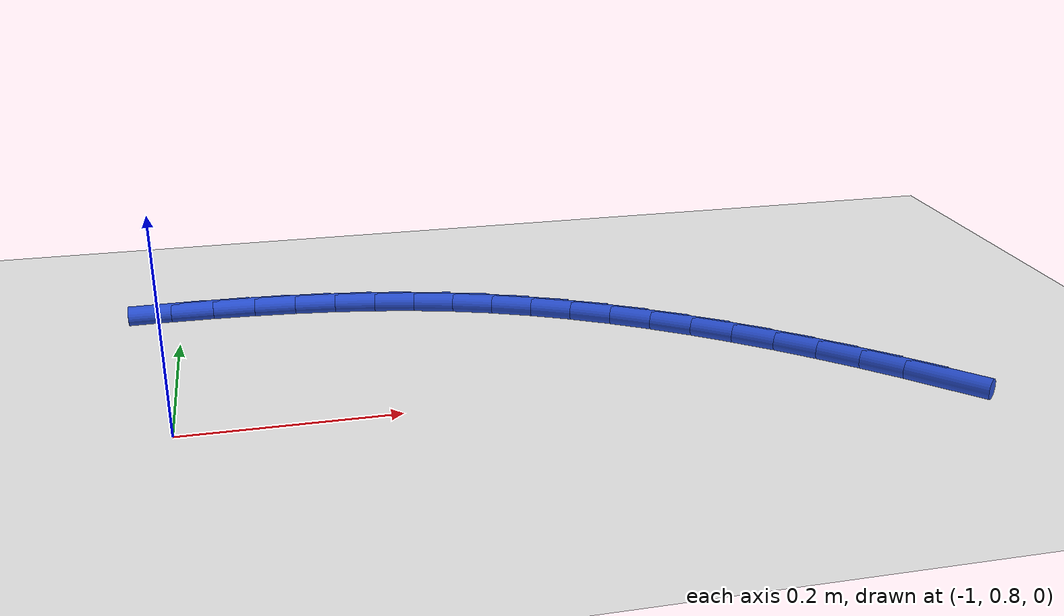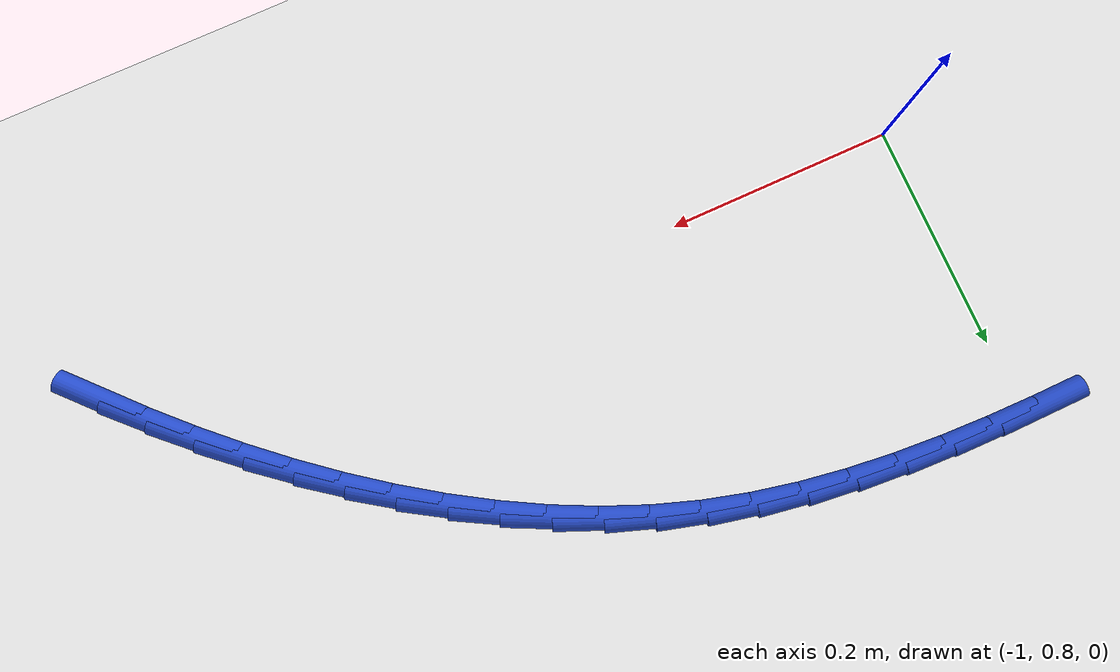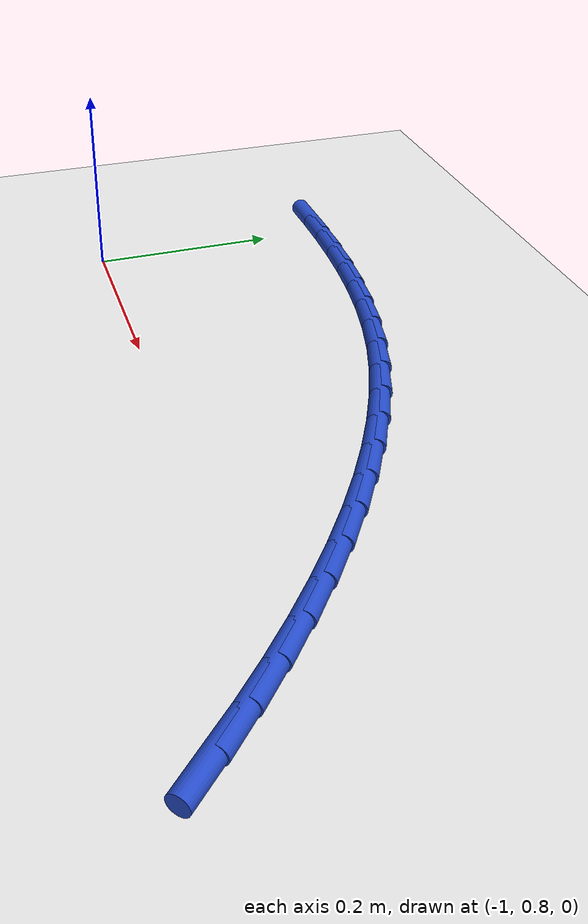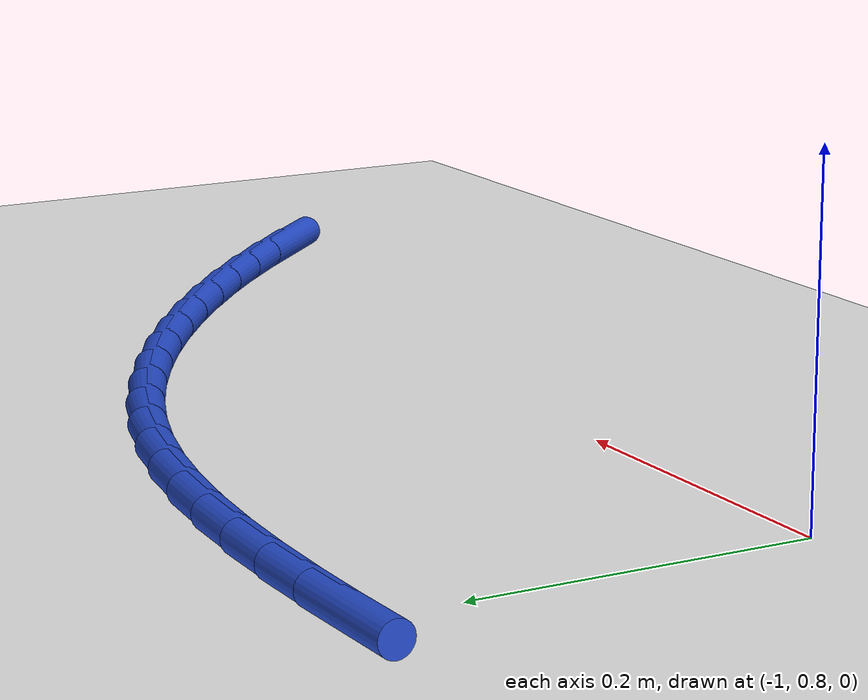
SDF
<sdf version="1.6">
 <world name="default">
  <model name="ground_plane">
   <static>1</static>
   <link name="link">
    <collision name="collision">
     <geometry><plane><normal>0 0 1</normal><size>100 100</size></plane></geometry>
     <surface><friction><ode><mu>100</mu><mu2>50</mu2></ode></friction></surface>
    </collision>
    <visual name="visual">
     <cast_shadows>0</cast_shadows>
     <geometry><plane><normal>0 0 1</normal><size>100 100</size></plane></geometry>
     <material>
      <script><uri>file://media/materials/scripts/gazebo.material</uri><name>Gazebo/WhiteGlow</name></script>
     </material>
    </visual>
   </link>
  </model>
  <model name="line">
   <link name="link_19">
    <pose>-0.2984399303198032 0.7394463939295164 0.01 0 1.57 -0.8218264541184704</pose>
    <collision name="collision">
     <geometry><cylinder><radius>0.01</radius><length>0.08</length></cylinder></geometry>
    </collision>
    <visual name="visual">
     <material>
      <script><name>Gazebo/Blue</name><uri>file://media/materials/scripts/gazebo.material</uri></script>
     </material>
     <geometry><cylinder><radius>0.01</radius><length>0.08</length></cylinder></geometry>
    </visual>
   </link>
   <link name="link_20">
    <pose>-0.32788916218607256 0.7711233332209424 0.01 0 1.57 -0.787594747588751</pose>
    <collision name="collision">
     <geometry><cylinder><radius>0.01</radius><length>0.08</length></cylinder></geometry>
    </collision>
    <visual name="visual">
     <material>
      <script><name>Gazebo/Blue</name><uri>file://media/materials/scripts/gazebo.material</uri></script>
     </material>
     <geometry><cylinder><radius>0.01</radius><length>0.08</length></cylinder></geometry>
    </visual>
   </link>
   <link name="link_21">
    <pose>-0.35847891361229944 0.8018477666329002 0.01 0 1.57 -0.7535687625416</pose>
    <collision name="collision">
     <geometry><cylinder><radius>0.01</radius><length>0.08</length></cylinder></geometry>
    </collision>
    <visual name="visual">
     <material>
      <script><name>Gazebo/Blue</name><uri>file://media/materials/scripts/gazebo.material</uri></script>
     </material>
     <geometry><cylinder><radius>0.01</radius><length>0.08</length></cylinder></geometry>
    </visual>
   </link>
   <link name="link_22">
    <pose>-0.3901768726482254 0.8315894771222807 0.01 0 1.57 -0.7187728610061271</pose>
    <collision name="collision">
     <geometry><cylinder><radius>0.01</radius><length>0.08</length></cylinder></geometry>
    </collision>
    <visual name="visual">
     <material>
      <script><name>Gazebo/Blue</name><uri>file://media/materials/scripts/gazebo.material</uri></script>
     </material>
     <geometry><cylinder><radius>0.01</radius><length>0.08</length></cylinder></geometry>
    </visual>
   </link>
   <link name="link_23">
    <pose>-0.42294711616901254 0.8602601343301706 0.01 0 1.57 -0.6816500478468487</pose>
    <collision name="collision">
     <geometry><cylinder><radius>0.01</radius><length>0.08</length></cylinder></geometry>
    </collision>
    <visual name="visual">
     <material>
      <script><name>Gazebo/Blue</name><uri>file://media/materials/scripts/gazebo.material</uri></script>
     </material>
     <geometry><cylinder><radius>0.01</radius><length>0.08</length></cylinder></geometry>
    </visual>
   </link>
   <link name="link_24">
    <pose>-0.4567484339095905 0.887686323877712 0.01 0 1.57 -0.641815248313914</pose>
    <collision name="collision">
     <geometry><cylinder><radius>0.01</radius><length>0.08</length></cylinder></geometry>
    </collision>
    <visual name="visual">
     <material>
      <script><name>Gazebo/Blue</name><uri>file://media/materials/scripts/gazebo.material</uri></script>
     </material>
     <geometry><cylinder><radius>0.01</radius><length>0.08</length></cylinder></geometry>
    </visual>
   </link>
   <link name="link_25">
    <pose>-0.49153919521280165 0.9136878661694657 0.01 0 1.57 -0.5989822738385835</pose>
    <collision name="collision">
     <geometry><cylinder><radius>0.01</radius><length>0.08</length></cylinder></geometry>
    </collision>
    <visual name="visual">
     <material>
      <script><name>Gazebo/Blue</name><uri>file://media/materials/scripts/gazebo.material</uri></script>
     </material>
     <geometry><cylinder><radius>0.01</radius><length>0.08</length></cylinder></geometry>
    </visual>
   </link>
   <link name="link_26">
    <pose>-0.5272777694214887 0.9380845816099944 0.01 0 1.57 -0.5528632504019215</pose>
    <collision name="collision">
     <geometry><cylinder><radius>0.01</radius><length>0.08</length></cylinder></geometry>
    </collision>
    <visual name="visual">
     <material>
      <script><name>Gazebo/Blue</name><uri>file://media/materials/scripts/gazebo.material</uri></script>
     </material>
     <geometry><cylinder><radius>0.01</radius><length>0.08</length></cylinder></geometry>
    </visual>
   </link>
   <link name="link_27">
    <pose>-0.563922525878494 0.9606962906038589 0.01 0 1.57 -0.5031789023159101</pose>
    <collision name="collision">
     <geometry><cylinder><radius>0.01</radius><length>0.08</length></cylinder></geometry>
    </collision>
    <visual name="visual">
     <material>
      <script><name>Gazebo/Blue</name><uri>file://media/materials/scripts/gazebo.material</uri></script>
     </material>
     <geometry><cylinder><radius>0.01</radius><length>0.08</length></cylinder></geometry>
    </visual>
   </link>
   <link name="link_28">
    <pose>-0.6014318339266597 0.981342813555621 0.01 0 1.57 -0.4496737825767832</pose>
    <collision name="collision">
     <geometry><cylinder><radius>0.01</radius><length>0.08</length></cylinder></geometry>
    </collision>
    <visual name="visual">
     <material>
      <script><name>Gazebo/Blue</name><uri>file://media/materials/scripts/gazebo.material</uri></script>
     </material>
     <geometry><cylinder><radius>0.01</radius><length>0.08</length></cylinder></geometry>
    </visual>
   </link>
   <link name="link_29">
    <pose>-0.6397640629088281 0.9998439708698423 0.01 0 1.57 -0.3921372829768603</pose>
    <collision name="collision">
     <geometry><cylinder><radius>0.01</radius><length>0.08</length></cylinder></geometry>
    </collision>
    <visual name="visual">
     <material>
      <script><name>Gazebo/Blue</name><uri>file://media/materials/scripts/gazebo.material</uri></script>
     </material>
     <geometry><cylinder><radius>0.01</radius><length>0.08</length></cylinder></geometry>
    </visual>
   </link>
   <link name="link_30">
    <pose>-0.678877582167842 1.0160195829510854 0.01 0 1.57 -0.33043101104305267</pose>
    <collision name="collision">
     <geometry><cylinder><radius>0.01</radius><length>0.08</length></cylinder></geometry>
    </collision>
    <visual name="visual">
     <material>
      <script><name>Gazebo/Blue</name><uri>file://media/materials/scripts/gazebo.material</uri></script>
     </material>
     <geometry><cylinder><radius>0.01</radius><length>0.08</length></cylinder></geometry>
    </visual>
   </link>
   <link name="link_31">
    <pose>-0.7187307601438464 1.029689482733615 0.01 0 1.57 -0.26649024651687075</pose>
    <collision name="collision">
     <geometry><cylinder><radius>0.01</radius><length>0.08</length></cylinder></geometry>
    </collision>
    <visual name="visual">
     <material>
      <script><name>Gazebo/Blue</name><uri>file://media/materials/scripts/gazebo.material</uri></script>
     </material>
     <geometry><cylinder><radius>0.01</radius><length>0.08</length></cylinder></geometry>
    </visual>
   </link>
   <link name="link_32">
    <pose>-0.7592759046672358 1.040757626187531 0.01 0 1.57 -0.20721351335880595</pose>
    <collision name="collision">
     <geometry><cylinder><radius>0.01</radius><length>0.08</length></cylinder></geometry>
    </collision>
    <visual name="visual">
     <material>
      <script><name>Gazebo/Blue</name><uri>file://media/materials/scripts/gazebo.material</uri></script>
     </material>
     <geometry><cylinder><radius>0.01</radius><length>0.08</length></cylinder></geometry>
    </visual>
   </link>
   <link name="link_33">
    <pose>-0.8004448166413262 1.0494126114283115 0.01 0 1.57 -0.15433676331437846</pose>
    <collision name="collision">
     <geometry><cylinder><radius>0.01</radius><length>0.08</length></cylinder></geometry>
    </collision>
    <visual name="visual">
     <material>
      <script><name>Gazebo/Blue</name><uri>file://media/materials/scripts/gazebo.material</uri></script>
     </material>
     <geometry><cylinder><radius>0.01</radius><length>0.08</length></cylinder></geometry>
    </visual>
   </link>
   <link name="link_34">
    <pose>-0.84216496390941 1.0559031807118058 0.01 0 1.57 -0.10799103424108641</pose>
    <collision name="collision">
     <geometry><cylinder><radius>0.01</radius><length>0.08</length></cylinder></geometry>
    </collision>
    <visual name="visual">
     <material>
      <script><name>Gazebo/Blue</name><uri>file://media/materials/scripts/gazebo.material</uri></script>
     </material>
     <geometry><cylinder><radius>0.01</radius><length>0.08</length></cylinder></geometry>
    </visual>
   </link>
   <link name="link_35">
    <pose>-0.88436381431478 1.0604780762938633 0.01 0 1.57 -0.06814832924212612</pose>
    <collision name="collision">
     <geometry><cylinder><radius>0.01</radius><length>0.08</length></cylinder></geometry>
    </collision>
    <visual name="visual">
     <material>
      <script><name>Gazebo/Blue</name><uri>file://media/materials/scripts/gazebo.material</uri></script>
     </material>
     <geometry><cylinder><radius>0.01</radius><length>0.08</length></cylinder></geometry>
    </visual>
   </link>
   <link name="link_36">
    <pose>-0.92696883570073 1.063386040430334 0.01 0 1.57 -0.03468151049792702</pose>
    <collision name="collision">
     <geometry><cylinder><radius>0.01</radius><length>0.08</length></cylinder></geometry>
    </collision>
    <visual name="visual">
     <material>
      <script><name>Gazebo/Blue</name><uri>file://media/materials/scripts/gazebo.material</uri></script>
     </material>
     <geometry><cylinder><radius>0.01</radius><length>0.08</length></cylinder></geometry>
    </visual>
   </link>
   <link name="link_37">
    <pose>-0.9699074959105518 1.0648758153770654 0.01 0 1.57 -0.00741490441610716</pose>
    <collision name="collision">
     <geometry><cylinder><radius>0.01</radius><length>0.08</length></cylinder></geometry>
    </collision>
    <visual name="visual">
     <material>
      <script><name>Gazebo/Blue</name><uri>file://media/materials/scripts/gazebo.material</uri></script>
     </material>
     <geometry><cylinder><radius>0.01</radius><length>0.08</length></cylinder></geometry>
    </visual>
   </link>
   <link name="link_38">
    <pose>-1.0131072627875393 1.0651961433899089 0.01 0 1.57 0.013836397803925857</pose>
    <collision name="collision">
     <geometry><cylinder><radius>0.01</radius><length>0.08</length></cylinder></geometry>
    </collision>
    <visual name="visual">
     <material>
      <script><name>Gazebo/Blue</name><uri>file://media/materials/scripts/gazebo.material</uri></script>
     </material>
     <geometry><cylinder><radius>0.01</radius><length>0.08</length></cylinder></geometry>
    </visual>
   </link>
  </model>
 </world>
</sdf>
